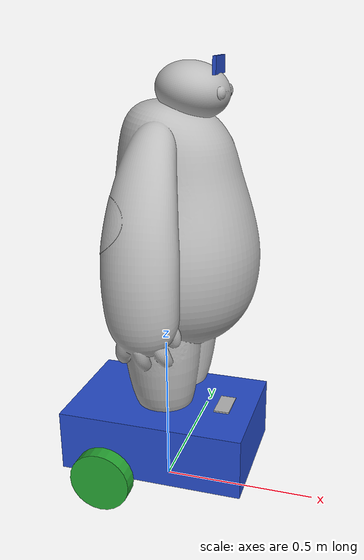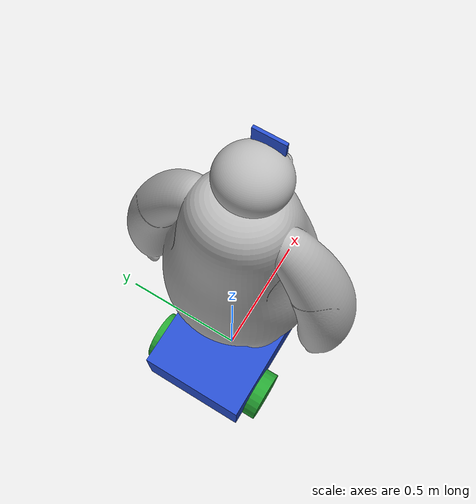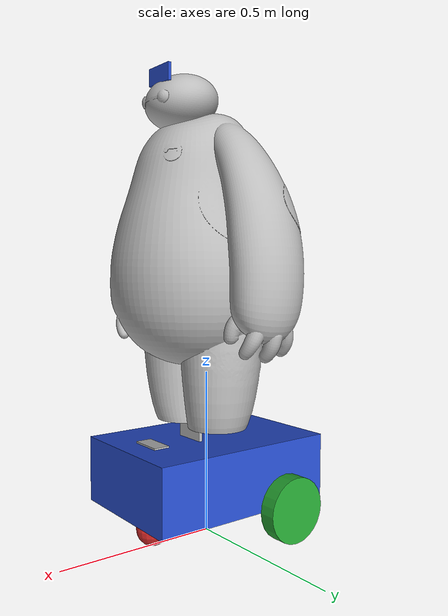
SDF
<sdf version='1.7'>
  <model name='medibot'>
    <link name='base_footprint'>
      <inertial>
        <pose>0.038676 0 0.264706 0 -0 0</pose>
        <mass>6.8</mass>
        <inertia>
          <ixx>0.441344</ixx>
          <ixy>0</ixy>
          <ixz>-0.0357074</ixz>
          <iyy>0.522927</iyy>
          <iyz>0</iyz>
          <izz>0.125541</izz>
        </inertia>
      </inertial>
      <collision name='base_footprint_fixed_joint_lump__base_link_collision'>
        <pose>0 0 0.2 0 -0 0</pose>
        <geometry>
          <box>
            <size>0.6 0.4 0.2</size>
          </box>
        </geometry>
        <surface>
          <contact>
            <ode/>
          </contact>
          <friction>
            <ode/>
          </friction>
        </surface>
      </collision>
      <collision name='base_footprint_fixed_joint_lump__caster_wheel_link_collision_1'>
        <pose>0.2 0 0.05 0 -0 0</pose>
        <geometry>
          <sphere>
            <radius>0.05</radius>
          </sphere>
        </geometry>
        <surface>
          <contact>
            <ode/>
          </contact>
          <friction>
            <ode>
              <mu>0.1</mu>
              <mu2>0.1</mu2>
            </ode>
          </friction>
        </surface>
      </collision>
      <collision name='base_footprint_fixed_joint_lump__imu_link_collision_2'>
        <pose>0.2 0 0.3 0 1.5708 0</pose>
        <geometry>
          <box>
            <size>0.01 0.1 0.05</size>
          </box>
        </geometry>
        <surface>
          <contact>
            <ode/>
          </contact>
          <friction>
            <ode/>
          </friction>
        </surface>
      </collision>
      <collision name='base_footprint_fixed_joint_lump__base_scan_collision_3'>
        <pose>0.06 0 0.325 0 -0 0</pose>
        <geometry>
          <box>
            <size>0.01 0.1 0.05</size>
          </box>
        </geometry>
        <surface>
          <contact>
            <ode/>
          </contact>
          <friction>
            <ode/>
          </friction>
        </surface>
      </collision>
      <collision name='base_footprint_fixed_joint_lump__baymax_link_collision_4'>
        <pose>0.02 0 0.9 0 -0 1.57</pose>
        <geometry>
          <mesh>
            <scale>0.007 0.007 0.007</scale>
            <uri>file:///home/nabil/ros2_ws/src/medibot/urdf/Baymax.STL</uri>
          </mesh>
        </geometry>
      </collision>
      <collision name='base_footprint_fixed_joint_lump__camera_link_collision_5'>
        <pose>0.17 0 1.375 0 -0 0</pose>
        <geometry>
          <box>
            <size>0.01 0.1 0.05</size>
          </box>
        </geometry>
        <surface>
          <contact>
            <ode/>
          </contact>
          <friction>
            <ode/>
          </friction>
        </surface>
      </collision>
      <visual name='base_footprint_fixed_joint_lump__base_link_visual'>
        <pose>0 0 0.2 0 -0 0</pose>
        <geometry>
          <box>
            <size>0.6 0.4 0.2</size>
          </box>
        </geometry>
        <material>
          <script>
            <name>Gazebo/Blue</name>
            <uri>file://media/materials/scripts/gazebo.material</uri>
          </script>
        </material>
      </visual>
      <visual name='base_footprint_fixed_joint_lump__caster_wheel_link_visual_1'>
        <pose>0.2 0 0.05 0 -0 0</pose>
        <geometry>
          <sphere>
            <radius>0.05</radius>
          </sphere>
        </geometry>
        <material>
          <script>
            <name>Gazebo/Red</name>
            <uri>file://media/materials/scripts/gazebo.material</uri>
          </script>
        </material>
      </visual>
      <visual name='base_footprint_fixed_joint_lump__imu_link_visual_2'>
        <pose>0.2 0 0.3 0 1.5708 0</pose>
        <geometry>
          <box>
            <size>0.01 0.1 0.05</size>
          </box>
        </geometry>
      </visual>
      <visual name='base_footprint_fixed_joint_lump__base_scan_visual_3'>
        <pose>0.06 0 0.325 0 -0 0</pose>
        <geometry>
          <box>
            <size>0.01 0.1 0.05</size>
          </box>
        </geometry>
      </visual>
      <visual name='base_footprint_fixed_joint_lump__baymax_link_visual_4'>
        <pose>0.02 0 0.9 0 -0 1.57</pose>
        <geometry>
          <mesh>
            <scale>0.007 0.007 0.007</scale>
            <uri>file:///home/nabil/ros2_ws/src/medibot/urdf/Baymax.STL</uri>
          </mesh>
        </geometry>
      </visual>
      <visual name='base_footprint_fixed_joint_lump__camera_link_visual_5'>
        <pose>0.17 0 1.375 0 -0 0</pose>
        <geometry>
          <box>
            <size>0.01 0.1 0.05</size>
          </box>
        </geometry>
        <material>
          <script>
            <name>Gazebo/Blue</name>
            <uri>file://media/materials/scripts/gazebo.material</uri>
          </script>
        </material>
      </visual>
      <sensor name='imu_sensor' type='imu'>
        <always_on>1</always_on>
        <update_rate>30</update_rate>
        <plugin name='my_imu_plugin' filename='libgazebo_ros_imu_sensor.so'>
          <ros>
            <remapping>~/out:=imu</remapping>
          </ros>
        </plugin>
        <pose>0.2 0 0.3 3.14159 1.57079 3.14159</pose>
      </sensor>
      <sensor name='lidar_sensor' type='ray'>
        <visualize>1</visualize>
        <update_rate>5</update_rate>
        <ray>
          <scan>
            <horizontal>
              <samples>720</samples>
              <resolution>1</resolution>
              <min_angle>0</min_angle>
              <max_angle>6.28</max_angle>
            </horizontal>
          </scan>
          <range>
            <min>0.2</min>
            <max>30</max>
          </range>
        </ray>
        <plugin name='turtlebot3_laserscan' filename='libgazebo_ros_ray_sensor.so'>
          <ros>
            <remapping>/turtlebot3_laserscan/out:=/scan</remapping>
          </ros>
          <output_type>sensor_msgs/LaserScan</output_type>
          <frame_name>base_scan</frame_name>
          <topic>/scan</topic>
        </plugin>
        <pose>0.06 0 0.325 0 -0 0</pose>
      </sensor>
      <sensor name='camera_sensor' type='camera'>
        <visualize>1</visualize>
        <update_rate>10</update_rate>
        <plugin name='camera_controller' filename='libgazebo_ros_camera.so'>
          <frame_name>camera_link</frame_name>
        </plugin>
        <pose>0.17 0 1.375 0 -0 0</pose>
      </sensor>
    </link>
    <joint name='wheel_left_joint' type='revolute'>
      <pose relative_to='base_footprint'>-0.15 0.225 0.1 0 -0 0</pose>
      <parent>base_footprint</parent>
      <child>left_wheel_link</child>
      <axis>
        <xyz>0 1 0</xyz>
        <limit>
          <lower>-1e+16</lower>
          <upper>1e+16</upper>
        </limit>
        <dynamics>
          <spring_reference>0</spring_reference>
          <spring_stiffness>0</spring_stiffness>
        </dynamics>
      </axis>
    </joint>
    <link name='left_wheel_link'>
      <pose relative_to='wheel_left_joint'>0 0 0 0 -0 0</pose>
      <inertial>
        <pose>0 0 0 1.5708 -0 0</pose>
        <mass>1</mass>
        <inertia>
          <ixx>0.00270833</ixx>
          <ixy>0</ixy>
          <ixz>0</ixz>
          <iyy>0.00270833</iyy>
          <iyz>0</iyz>
          <izz>0.005</izz>
        </inertia>
      </inertial>
      <collision name='left_wheel_link_collision'>
        <pose>0 0 0 1.5708 -0 0</pose>
        <geometry>
          <cylinder>
            <length>0.05</length>
            <radius>0.1</radius>
          </cylinder>
        </geometry>
        <surface>
          <contact>
            <ode/>
          </contact>
          <friction>
            <ode/>
          </friction>
        </surface>
      </collision>
      <visual name='left_wheel_link_visual'>
        <pose>0 0 0 1.5708 -0 0</pose>
        <geometry>
          <cylinder>
            <length>0.05</length>
            <radius>0.1</radius>
          </cylinder>
        </geometry>
        <material>
          <script>
            <name>Gazebo/Green</name>
            <uri>file://media/materials/scripts/gazebo.material</uri>
          </script>
        </material>
      </visual>
    </link>
    <joint name='wheel_right_joint' type='revolute'>
      <pose relative_to='base_footprint'>-0.15 -0.225 0.1 0 -0 0</pose>
      <parent>base_footprint</parent>
      <child>right_wheel_link</child>
      <axis>
        <xyz>0 1 0</xyz>
        <limit>
          <lower>-1e+16</lower>
          <upper>1e+16</upper>
        </limit>
        <dynamics>
          <spring_reference>0</spring_reference>
          <spring_stiffness>0</spring_stiffness>
        </dynamics>
      </axis>
    </joint>
    <link name='right_wheel_link'>
      <pose relative_to='wheel_right_joint'>0 0 0 0 -0 0</pose>
      <inertial>
        <pose>0 0 0 1.5708 -0 0</pose>
        <mass>1</mass>
        <inertia>
          <ixx>0.00270833</ixx>
          <ixy>0</ixy>
          <ixz>0</ixz>
          <iyy>0.00270833</iyy>
          <iyz>0</iyz>
          <izz>0.005</izz>
        </inertia>
      </inertial>
      <collision name='right_wheel_link_collision'>
        <pose>0 0 0 1.5708 -0 0</pose>
        <geometry>
          <cylinder>
            <length>0.05</length>
            <radius>0.1</radius>
          </cylinder>
        </geometry>
        <surface>
          <contact>
            <ode/>
          </contact>
          <friction>
            <ode/>
          </friction>
        </surface>
      </collision>
      <visual name='right_wheel_link_visual'>
        <pose>0 0 0 1.5708 -0 0</pose>
        <geometry>
          <cylinder>
            <length>0.05</length>
            <radius>0.1</radius>
          </cylinder>
        </geometry>
        <material>
          <script>
            <name>Gazebo/Green</name>
            <uri>file://media/materials/scripts/gazebo.material</uri>
          </script>
        </material>
      </visual>
    </link>
    <static>0</static>
    <plugin name='diff_drive_controller' filename='libgazebo_ros_diff_drive.so'>
      <update_rate>50</update_rate>
      <left_joint>wheel_left_joint</left_joint>
      <right_joint>wheel_right_joint</right_joint>
      <wheel_separation>0.45</wheel_separation>
      <wheel_diameter>0.2</wheel_diameter>
      <publish_odom>1</publish_odom>
      <publish_odom_tf>1</publish_odom_tf>
      <publish_wheel_tf>1</publish_wheel_tf>
      <odometry_topic>odom</odometry_topic>
      <odometry_frame>odom</odometry_frame>
      <robot_base_frame>base_footprint</robot_base_frame>
    </plugin>
  </model>
</sdf>
